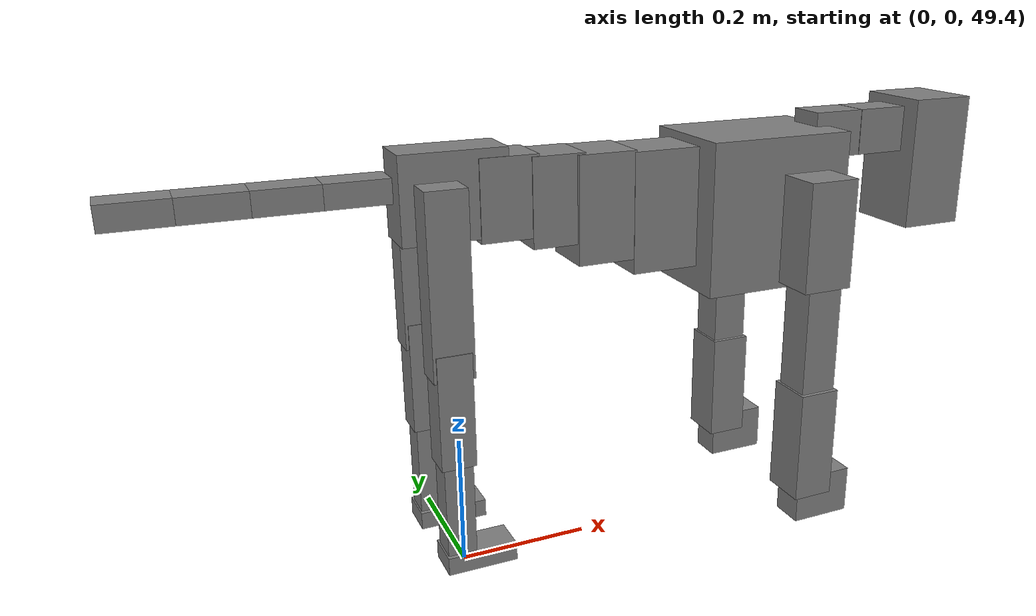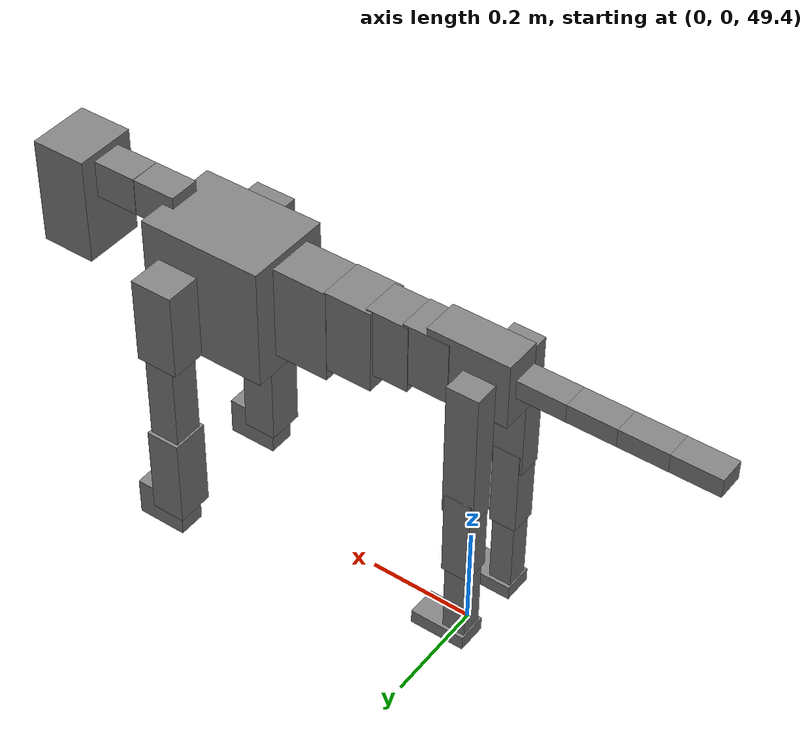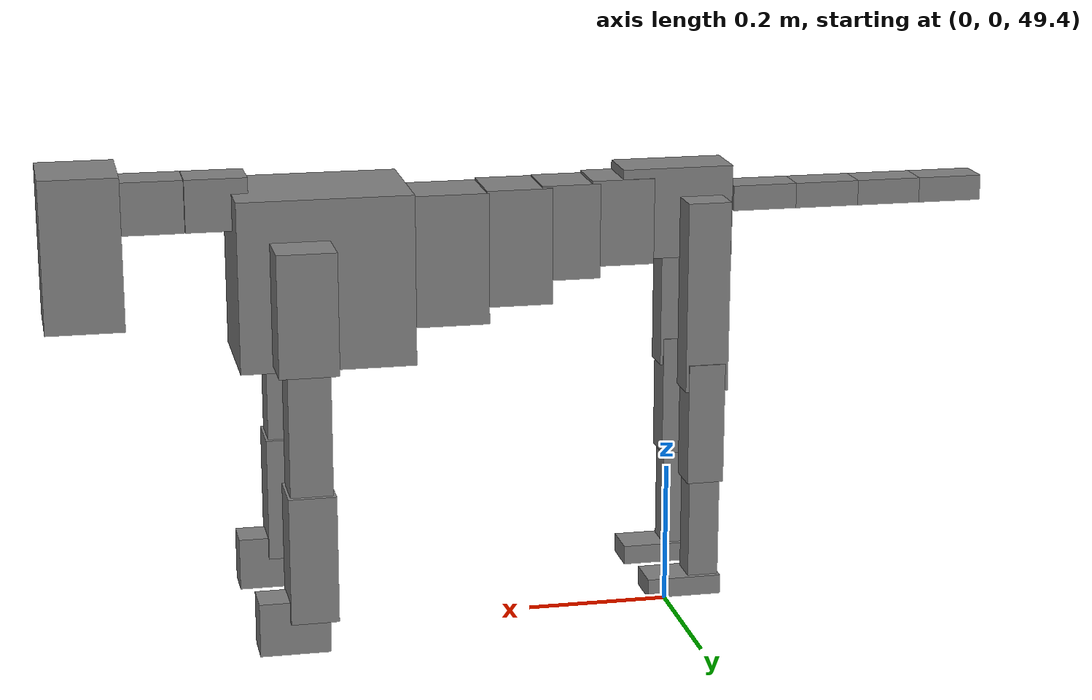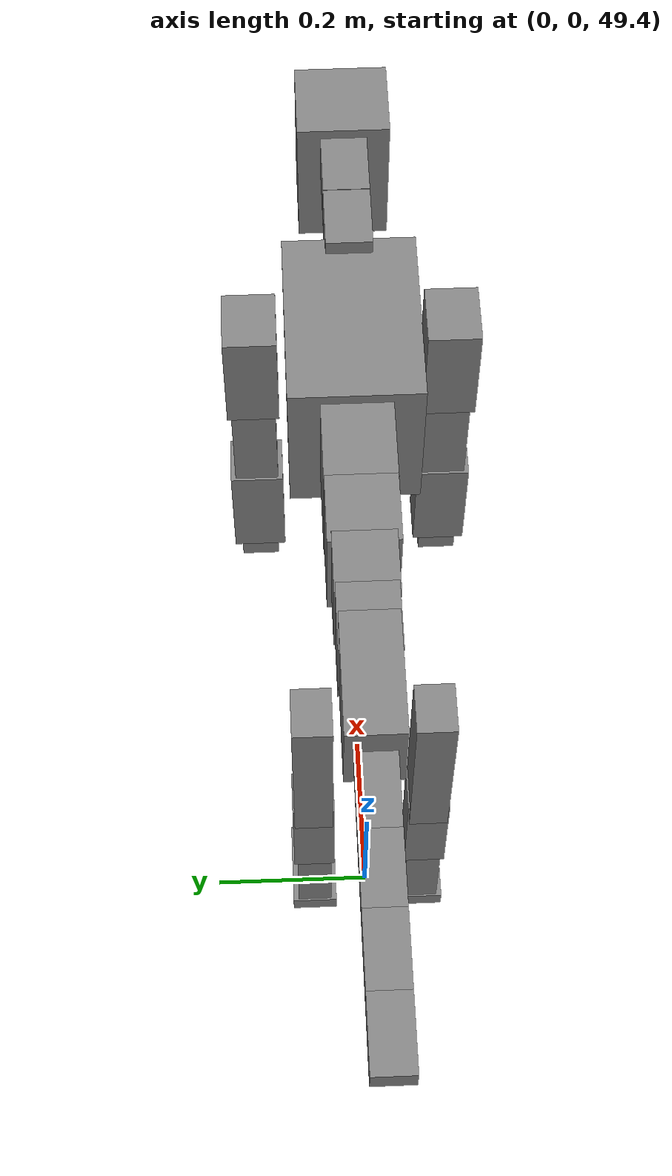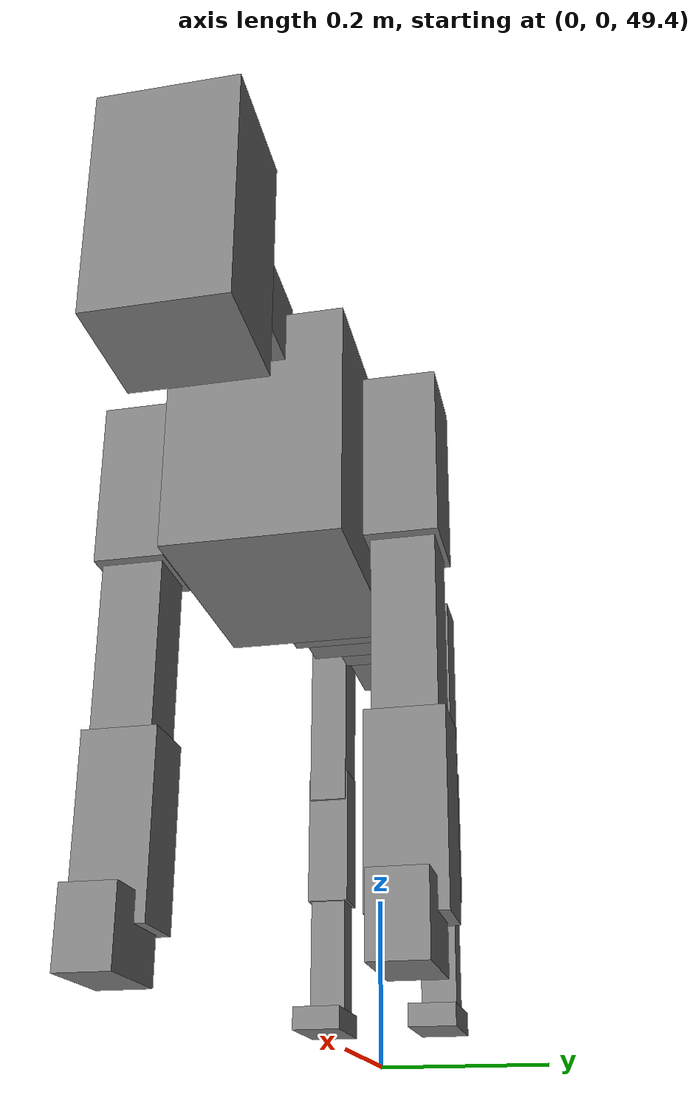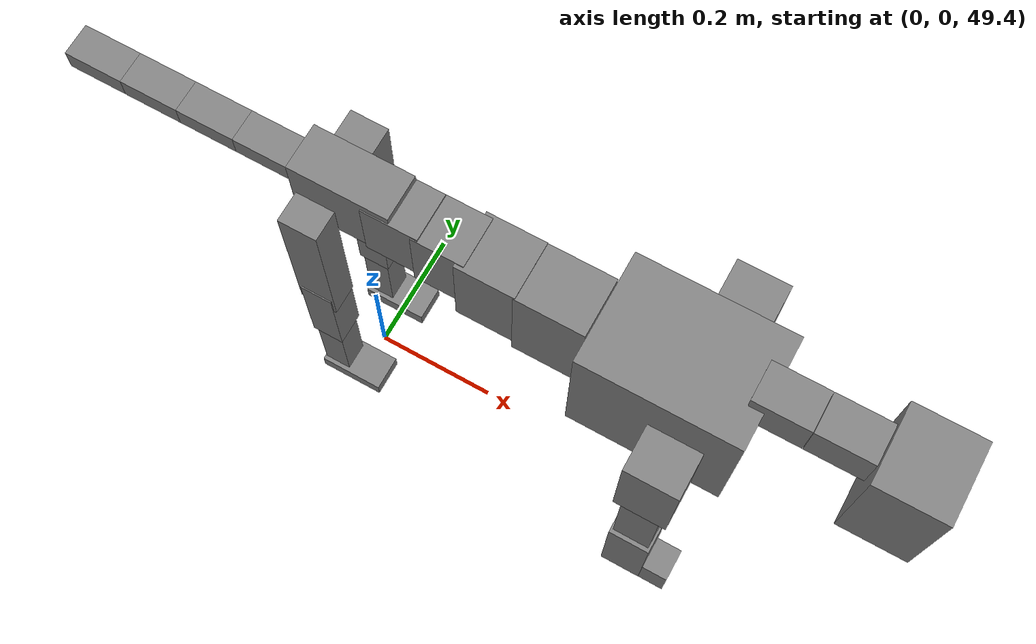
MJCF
<mujoco model="dog">

    <default>
        <joint armature="0.02" stiffness="1" damping="0.2" limited="true"/>
        <geom condim="3" friction="1 0.05 0.05" margin="0.01"/>
        <motor ctrllimited="true" ctrlrange="-1.0 1.0" forcelimited="true" gear="50"/>
    </default>

    <compiler inertiafromgeom="true" angle="radian"/>

    <option timestep="0.016" iterations="50" tolerance="1e-10" solver="Newton" jacobian="dense" cone="pyramidal"/>

    <size nconmax="20000" njmax="60000" nstack="5000000"/>
    <visual>
        <map force="0.1" zfar="30"/>
        <rgba haze="0.15 0.25 0.35 1"/>
        <quality shadowsize="2048"/>
        <global offwidth="800" offheight="800"/>
    </visual>

    <asset>
        <texture type="skybox" builtin="gradient" rgb1="0.3 0.5 0.7" rgb2="0 0 0" width="512" height="512"/>
        <texture name="texplane" type="2d" builtin="checker" rgb1=".2 .3 .4" rgb2=".1 0.15 0.2" width="512" height="512"
                 mark="cross" markrgb=".8 .8 .8"/>
        <texture name="texgeom" type="cube" builtin="flat" mark="cross" width="127" height="1278" rgb1="0.8 0.6 0.4"
                 rgb2="0.8 0.6 0.4" markrgb="1 1 1" random="0.01"/>

        <material name="matplane" reflectance="0.3" texture="texplane" texrepeat="1 1" texuniform="true"/>
        <material name="matgeom" texture="texgeom" texuniform="true" rgba="0.8 0.6 .4 1"/>
    </asset>

    <worldbody>
        <geom name="floor" pos="0 0 0" size="0 0 .25" type="plane" material="matplane" condim="3"/>

        <light directional="false" diffuse=".2 .2 .2" specular="0 0 0" pos="0 0 5" dir="0 0 -1" castshadow="false"/>
        <light mode="targetbodycom" target="torso" directional="false" diffuse=".8 .8 .8" specular="0.3 0.3 0.3"
               pos="0 0 4.0" dir="0 0 -1"/>

        <body name="root" pos="0 0 50">
            <freejoint name="root_1"/>
            <geom type="box" pos="0 0 -0.02" size="0.0774  0.0358  0.063" density="2030"/>

            <body name="spine1" pos="0.054 0 0">
                <joint name="spine1_y" axis="0 1 0" range="0 0.7" limited="true"/>
                <geom type="box" pos="0.02375 0 -0.03" size="0.04375  0.0375  0.05985" density="2030"/>

                <body name="spine2" pos="0.0612 0 0">
                    <joint name="spine2_y" axis="0 1 0" range="-0.15 0.15" limited="true"/>
                    <geom type="box" pos="0.03555  0  -0.04" size="0.04055  0.039  0.06615" density="2030"/>

                    <body name="spine3" pos="0.0730 0 0">
                        <joint name="spine3_y" axis="0 1 0" range="-0.15 0.15" limited="true"/>
                        <geom type="box" pos="0.03555  0  -0.057" size="0.04555  0.0445  0.081" density="2030"/>

                        <body name="spine4" pos="0.0780 0 0">
                            <joint name="spine4_y" axis="0 1 0" range="-0.15 0.15" limited="true"/>
                            <geom type="box" pos="0.05265  0  -0.07" size="0.05265  0.045  0.09135" density="2030"/>

                            <body name="torso" pos="0.1082 0 0">
                                <joint name="torso_y" axis="0 1 0" range="-0.15 0.15" limited="true"/>
                                <geom type="box" pos="0.11925  0  -0.085" size="0.11925  0.085  0.11745"
                                      density="2030"/>

                                <body name="neck1" pos="0.2160  0   0.0180">
                                    <joint name="neck1_y" axis="0 1 0" range="-1.2  -1" limited="true"/>
                                    <geom type="box" pos="0.0423  0  0" size="0.0423  0.03  0.036" density="2325"/>

                                    <body name="neck2" pos="0.0853  0  0">
                                        <joint name="neck2_y" axis="0 1 0" range="0.1  0" limited="true"/>
                                        <geom type="box" pos="0.0423  0  0" size="0.0423  0.03  0.036" density="2325"/>

                                        <body name="head" pos="0.0853  0  0">
                                            <joint name="head_y" axis="0 1 0" range="-0.3  -0.2" limited="true"/>
                                            <geom type="box" pos="0.0531  0  -0.055" size="0.0531  0.06  0.1044"
                                                  density="4030"/>

                                        </body>
                                    </body>
                                </body>

                                <body name="front_shoulder" pos="0.156  0   -0.0480">
                                    <joint name="front_shoulder_y" axis="0 1 0" range="-1 1.5" limited="true"/>
                                    <geom type="box" pos="0 0.13 -0.0569" size="0.0403  0.0344  0.0836" density="1158"/>
                                    <geom type="box" pos="0 -0.13 -0.0569" size="0.0403  0.0344  0.0836"
                                          density="1158"/>

                                    <body name="front_elbow" pos="0  0  -0.1138">
                                        <joint name="front_elbow_y" axis="0 1 0" range="-2 0" limited="true"/>
                                        <geom type="box" pos="0 0.13 -0.1030" size="0.0290  0.0296  0.1030"
                                              density="1081"/>
                                        <geom type="box" pos="0 -0.13 -0.1030" size="0.0290  0.0296  0.1030"
                                              density="1081"/>

                                        <body name="front_wrist" pos="0  0  -0.2061">
                                            <joint name="front_wrist_y" axis="0 1 0" range="-0.2 0" limited="true"/>
                                            <geom type="box" pos="0 0.13 -0.0757" size="0.0326  0.0362  0.0889"
                                                  density="1664"/>
                                            <geom type="box" pos="0 -0.13 -0.0757" size="0.0326  0.0362  0.0889"
                                                  density="1664"/>

                                            <body name="front_finger_end" pos="0  0  -0.1514">
                                                <joint name="front_finger_y" axis="0 1 0" range="-0.4 1"
                                                       limited="true"/>
                                                <geom type="box" pos="0.0262  0.13  -0.0224"
                                                      size="0.0481  0.0262  0.0374" density="1515"/>
                                                <geom type="box" pos="0.0262  -0.13  -0.0224"
                                                      size="0.0481  0.0262  0.0374" density="1515"/>

                                            </body>

                                        </body>
                                    </body>
                                </body>

                            </body>
                        </body>
                    </body>
                </body>
            </body>

            <body name="back_hip" pos="-0.03 0 -0.018">
                <joint name="back_hip_y" axis="0 1 0" range="-1.5 0.3" limited="true"/>
                <geom type="box" pos="0 0.07 -0.1104" size="0.0299  0.0234  0.1332" density="1154"/>
                <geom type="box" pos="0 -0.07 -0.1104" size="0.0299  0.0234  0.1332" density="1154"/>

                <body name="back_knee" pos="0  0  -0.2208">
                    <joint name="back_knee_y" axis="0 1 0" range="0 2.8" limited="true"/>
                    <geom type="box" pos="0 0.07 -0.0698" size="0.0256  0.0253  0.0854" density="1227"/>
                    <geom type="box" pos="0 -0.07 -0.0698" size="0.0256  0.0253  0.0854" density="1227"/>

                    <body name="back_ankle" pos="0  0  -0.1396">
                        <joint name="back_ankle_y" axis="0 1 0" range="-2.2 0" limited="true"/>
                        <geom type="box" pos="0 0.07 -0.0845" size="0.0215  0.0215  0.0958" density="1284"/>
                        <geom type="box" pos="0 -0.07 -0.0845" size="0.0215  0.0215  0.0958" density="1284"/>

                        <body name="back_toe_end" pos="0  0  -0.1690">
                            <joint name="back_toe_y" axis="0 1 0" range="-0.4 1" limited="true"/>
                            <geom type="box" pos="0.0285  0.07  0.0014" size="0.0522  0.0285  0.0136" density="1515"/>
                            <geom type="box" pos="0.0285  -0.07  0.0014" size="0.0522  0.0285  0.0136" density="1515"/>

                        </body>
                    </body>
                </body>
            </body>

            <body name="tail1" pos="-0.074 0 -0.006">
                <joint name="tail1_y" axis="0 1 0" range="-0.2 0.2" limited="true"/>
                <geom type="box" pos="-0.0536  0  0" size="0.045  0.025  0.0175" density="1587"/>

                <body name="tail2" pos="-0.09 0 0">
                    <joint name="tail2_y" axis="0 1 0" range="-0.2 0.2" limited="true"/>
                    <geom type="box" pos="-0.0536  0  0" size="0.045  0.025  0.0175" density="1587"/>

                    <body name="tail3" pos="-0.09 0 0">
                        <joint name="tail3_y" axis="0 1 0" range="-0.2 0.2" limited="true"/>
                        <geom type="box" pos="-0.0536  0  0" size="0.045  0.025  0.0175" density="1587"/>

                        <body name="tail4" pos="-0.09 0 0">
                            <joint name="tail4_y" axis="0 1 0" range="-0.2 0.2" limited="true"/>
                            <geom type="box" pos="-0.0536  0  0" size="0.045  0.025  0.0175" density="1587"/>

                        </body>
                    </body>
                </body>
            </body>
        </body>
    </worldbody>

    <actuator>
        <motor joint="spine1_y" forcerange="-150 150     "/>
        <motor joint="spine2_y" forcerange="-150 150     "/>
        <motor joint="spine3_y" forcerange="-150 150     "/>
        <motor joint="spine4_y" forcerange="-150 150     "/>
        <motor joint="torso_y" forcerange="-150 150     "/>
        <motor joint="neck1_y" forcerange="-100 100       "/>
        <motor joint="neck2_y" forcerange="-100 100       "/>
        <motor joint="head_y" forcerange="-150 150       "/>
        <motor joint="front_shoulder_y" forcerange="-145.73 183.73"/>
        <motor joint="front_elbow_y" forcerange="-198.69 116.73"/>
        <motor joint="front_wrist_y" forcerange="-143.56 145.86"/>
        <motor joint="front_finger_y" forcerange="-27.32 72.48"/>
        <motor joint="back_hip_y" forcerange="-208.07 304.34"/>
        <motor joint="back_knee_y" forcerange="-250.55 317.10"/>
        <motor joint="back_angle_y" forcerange="-72.36 171.11"/>
        <motor joint="back_toe_y" forcerange="-48.46 99.31"/>
        <motor joint="tail1_y" forcerange="-50 50     "/>
        <motor joint="tail2_y" forcerange="-50 50     "/>
        <motor joint="tail3_y" forcerange="-50 50     "/>
        <motor joint="tail4_y" forcerange="-50 50     "/>
    </actuator>
</mujoco>
